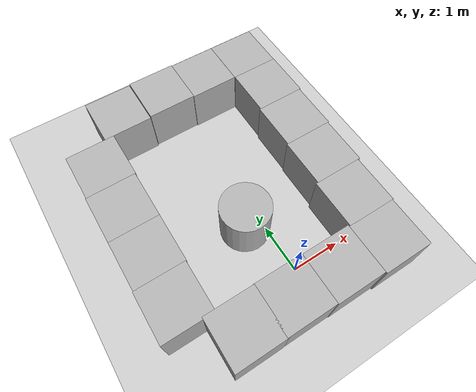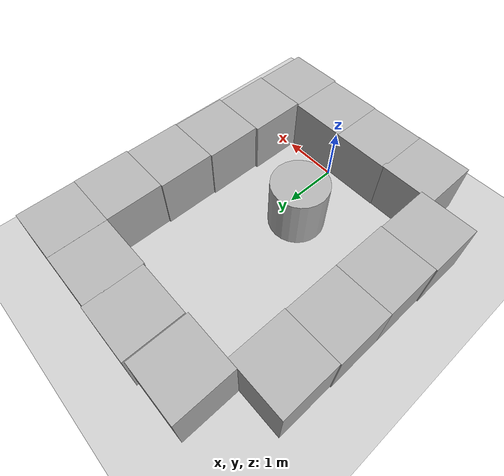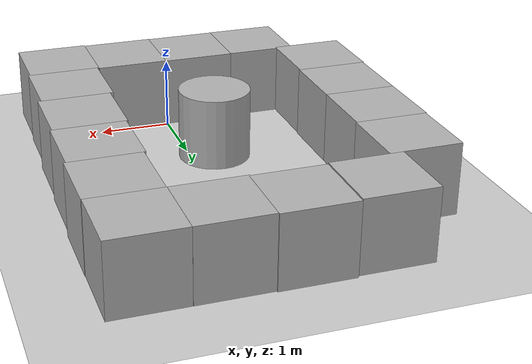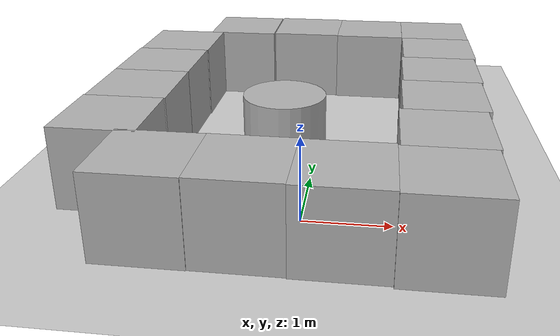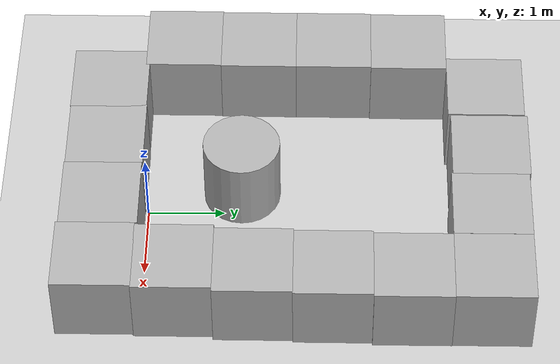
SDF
<sdf version='1.9'>
  <world name='husarion_world'>
    <physics name='1ms' type='ignored'>
      <max_step_size>0.001</max_step_size>
      <real_time_factor>1</real_time_factor>
      <real_time_update_rate>1000</real_time_update_rate>
    </physics>
    <gravity>0 0 -9.8</gravity>
    <magnetic_field>6e-06 2.3e-05 -4.2e-05</magnetic_field>
    <atmosphere type='adiabatic'/>
    <scene>
      <ambient>0.4 0.4 0.4 1</ambient>
      <background>0.7 0.7 0.7 1</background>
      <shadows>true</shadows>
    </scene>
    <model name='ground_plane'>
      <static>true</static>
      <link name='link'>
        <collision name='collision'>
          <geometry>
            <plane>
              <normal>0 0 1</normal>
              <size>100 100</size>
            </plane>
          </geometry>
          <surface>
            <friction>
              <ode/>
            </friction>
            <bounce/>
            <contact/>
          </surface>
        </collision>
        <visual name='visual'>
          <geometry>
            <plane>
              <normal>0 0 1</normal>
              <size>100 100</size>
            </plane>
          </geometry>
          <material>
            <ambient>0.8 0.8 0.8 1</ambient>
            <diffuse>0.8 0.8 0.8 1</diffuse>
            <specular>0.8 0.8 0.8 1</specular>
          </material>
        </visual>
        <pose>0 0 0 0 -0 0</pose>
        <inertial>
          <pose>0 0 0 0 -0 0</pose>
          <mass>1</mass>
          <inertia>
            <ixx>1</ixx>
            <ixy>0</ixy>
            <ixz>0</ixz>
            <iyy>1</iyy>
            <iyz>0</iyz>
            <izz>1</izz>
          </inertia>
        </inertial>
        <enable_wind>false</enable_wind>
      </link>
      <pose>0 0 0 0 -0 0</pose>
      <self_collide>false</self_collide>
    </model>

    <model name='box'>
      <pose>1.61231 3.42244 0.5 0 0 0</pose>
      <link name='box_link'>
        <inertial>
          <inertia>
            <ixx>0.16666</ixx>
            <ixy>0</ixy>
            <ixz>0</ixz>
            <iyy>0.16666</iyy>
            <iyz>0</iyz>
            <izz>0.16666</izz>
          </inertia>
          <mass>1</mass>
          <pose>0 0 0 0 -0 0</pose>
        </inertial>
        <collision name='box_collision'>
          <geometry>
            <box>
              <size>1 1 1</size>
            </box>
          </geometry>
          <surface>
            <friction>
              <ode/>
            </friction>
            <bounce/>
            <contact/>
          </surface>
        </collision>
        <visual name='box_visual'>
          <geometry>
            <box>
              <size>1 1 1</size>
            </box>
          </geometry>
          <material>
            <ambient>0.3 0.3 0.3 1</ambient>
            <diffuse>0.7 0.7 0.7 1</diffuse>
            <specular>1 1 1 1</specular>
          </material>
        </visual>
        <pose>0 0 0 0 -0 0</pose>
        <enable_wind>false</enable_wind>
      </link>
      <static>false</static>
      <self_collide>false</self_collide>
    </model>
    <model name='box_0'>
      <pose>1.58532 2.42244 0.5 -0 0 0</pose>
      <link name='box_link'>
        <inertial>
          <inertia>
            <ixx>0.16666</ixx>
            <ixy>0</ixy>
            <ixz>0</ixz>
            <iyy>0.16666</iyy>
            <iyz>0</iyz>
            <izz>0.16666</izz>
          </inertia>
          <mass>1</mass>
          <pose>0 0 0 0 -0 0</pose>
        </inertial>
        <collision name='box_collision'>
          <geometry>
            <box>
              <size>1 1 1</size>
            </box>
          </geometry>
          <surface>
            <friction>
              <ode/>
            </friction>
            <bounce/>
            <contact/>
          </surface>
        </collision>
        <visual name='box_visual'>
          <geometry>
            <box>
              <size>1 1 1</size>
            </box>
          </geometry>
          <material>
            <ambient>0.3 0.3 0.3 1</ambient>
            <diffuse>0.7 0.7 0.7 1</diffuse>
            <specular>1 1 1 1</specular>
          </material>
        </visual>
        <pose>0 0 0 0 -0 0</pose>
        <enable_wind>false</enable_wind>
      </link>
      <static>false</static>
      <self_collide>false</self_collide>
    </model>
    <model name='box_1'>
      <pose>1.56194 1.42244 0.5 -0 0 0</pose>
      <link name='box_link'>
        <inertial>
          <inertia>
            <ixx>0.16666</ixx>
            <ixy>0</ixy>
            <ixz>0</ixz>
            <iyy>0.16666</iyy>
            <iyz>0</iyz>
            <izz>0.16666</izz>
          </inertia>
          <mass>1</mass>
          <pose>0 0 0 0 -0 0</pose>
        </inertial>
        <collision name='box_collision'>
          <geometry>
            <box>
              <size>1 1 1</size>
            </box>
          </geometry>
          <surface>
            <friction>
              <ode/>
            </friction>
            <bounce/>
            <contact/>
          </surface>
        </collision>
        <visual name='box_visual'>
          <geometry>
            <box>
              <size>1 1 1</size>
            </box>
          </geometry>
          <material>
            <ambient>0.3 0.3 0.3 1</ambient>
            <diffuse>0.7 0.7 0.7 1</diffuse>
            <specular>1 1 1 1</specular>
          </material>
        </visual>
        <pose>0 0 0 0 -0 0</pose>
        <enable_wind>false</enable_wind>
      </link>
      <static>false</static>
      <self_collide>false</self_collide>
    </model>
    <model name='box_2'>
      <pose>1.51585 0.422439 0.5 0 -0 -0</pose>
      <link name='box_link'>
        <inertial>
          <inertia>
            <ixx>0.16666</ixx>
            <ixy>0</ixy>
            <ixz>0</ixz>
            <iyy>0.16666</iyy>
            <iyz>0</iyz>
            <izz>0.16666</izz>
          </inertia>
          <mass>1</mass>
          <pose>0 0 0 0 -0 0</pose>
        </inertial>
        <collision name='box_collision'>
          <geometry>
            <box>
              <size>1 1 1</size>
            </box>
          </geometry>
          <surface>
            <friction>
              <ode/>
            </friction>
            <bounce/>
            <contact/>
          </surface>
        </collision>
        <visual name='box_visual'>
          <geometry>
            <box>
              <size>1 1 1</size>
            </box>
          </geometry>
          <material>
            <ambient>0.3 0.3 0.3 1</ambient>
            <diffuse>0.7 0.7 0.7 1</diffuse>
            <specular>1 1 1 1</specular>
          </material>
        </visual>
        <pose>0 0 0 0 -0 0</pose>
        <enable_wind>false</enable_wind>
      </link>
      <static>false</static>
      <self_collide>false</self_collide>
    </model>
    <model name='box_3'>
      <pose>1.49307 -0.571739 0.5 0 0 0</pose>
      <link name='box_link'>
        <inertial>
          <inertia>
            <ixx>0.16666</ixx>
            <ixy>0</ixy>
            <ixz>0</ixz>
            <iyy>0.16666</iyy>
            <iyz>0</iyz>
            <izz>0.16666</izz>
          </inertia>
          <mass>1</mass>
          <pose>0 0 0 0 -0 0</pose>
        </inertial>
        <collision name='box_collision'>
          <geometry>
            <box>
              <size>1 1 1</size>
            </box>
          </geometry>
          <surface>
            <friction>
              <ode/>
            </friction>
            <bounce/>
            <contact/>
          </surface>
        </collision>
        <visual name='box_visual'>
          <geometry>
            <box>
              <size>1 1 1</size>
            </box>
          </geometry>
          <material>
            <ambient>0.3 0.3 0.3 1</ambient>
            <diffuse>0.7 0.7 0.7 1</diffuse>
            <specular>1 1 1 1</specular>
          </material>
        </visual>
        <pose>0 0 0 0 -0 0</pose>
        <enable_wind>false</enable_wind>
      </link>
      <static>false</static>
      <self_collide>false</self_collide>
    </model>
    <model name='box_4'>
      <pose>0.493073 -0.543258 0.5 0 -0 -0</pose>
      <link name='box_link'>
        <inertial>
          <inertia>
            <ixx>0.16666</ixx>
            <ixy>0</ixy>
            <ixz>0</ixz>
            <iyy>0.16666</iyy>
            <iyz>0</iyz>
            <izz>0.16666</izz>
          </inertia>
          <mass>1</mass>
          <pose>0 0 0 0 -0 0</pose>
        </inertial>
        <collision name='box_collision'>
          <geometry>
            <box>
              <size>1 1 1</size>
            </box>
          </geometry>
          <surface>
            <friction>
              <ode/>
            </friction>
            <bounce/>
            <contact/>
          </surface>
        </collision>
        <visual name='box_visual'>
          <geometry>
            <box>
              <size>1 1 1</size>
            </box>
          </geometry>
          <material>
            <ambient>0.3 0.3 0.3 1</ambient>
            <diffuse>0.7 0.7 0.7 1</diffuse>
            <specular>1 1 1 1</specular>
          </material>
        </visual>
        <pose>0 0 0 0 -0 0</pose>
        <enable_wind>false</enable_wind>
      </link>
      <static>false</static>
      <self_collide>false</self_collide>
    </model>
    <model name='box_5'>
      <pose>1.60716 4.42244 0.5 -0 0 -0</pose>
      <link name='box_link'>
        <inertial>
          <inertia>
            <ixx>0.16666</ixx>
            <ixy>0</ixy>
            <ixz>0</ixz>
            <iyy>0.16666</iyy>
            <iyz>0</iyz>
            <izz>0.16666</izz>
          </inertia>
          <mass>1</mass>
          <pose>0 0 0 0 -0 0</pose>
        </inertial>
        <collision name='box_collision'>
          <geometry>
            <box>
              <size>1 1 1</size>
            </box>
          </geometry>
          <surface>
            <friction>
              <ode/>
            </friction>
            <bounce/>
            <contact/>
          </surface>
        </collision>
        <visual name='box_visual'>
          <geometry>
            <box>
              <size>1 1 1</size>
            </box>
          </geometry>
          <material>
            <ambient>0.3 0.3 0.3 1</ambient>
            <diffuse>0.7 0.7 0.7 1</diffuse>
            <specular>1 1 1 1</specular>
          </material>
        </visual>
        <pose>0 0 0 0 -0 0</pose>
        <enable_wind>false</enable_wind>
      </link>
      <static>false</static>
      <self_collide>false</self_collide>
    </model>
    <model name='box_6'>
      <pose>0.606773 4.42413 0.5 0 0 -0</pose>
      <link name='box_link'>
        <inertial>
          <inertia>
            <ixx>0.16666</ixx>
            <ixy>0</ixy>
            <ixz>0</ixz>
            <iyy>0.16666</iyy>
            <iyz>0</iyz>
            <izz>0.16666</izz>
          </inertia>
          <mass>1</mass>
          <pose>0 0 0 0 -0 0</pose>
        </inertial>
        <collision name='box_collision'>
          <geometry>
            <box>
              <size>1 1 1</size>
            </box>
          </geometry>
          <surface>
            <friction>
              <ode/>
            </friction>
            <bounce/>
            <contact/>
          </surface>
        </collision>
        <visual name='box_visual'>
          <geometry>
            <box>
              <size>1 1 1</size>
            </box>
          </geometry>
          <material>
            <ambient>0.3 0.3 0.3 1</ambient>
            <diffuse>0.7 0.7 0.7 1</diffuse>
            <specular>1 1 1 1</specular>
          </material>
        </visual>
        <pose>0 0 0 0 -0 0</pose>
        <enable_wind>false</enable_wind>
      </link>
      <static>false</static>
      <self_collide>false</self_collide>
    </model>
    <model name='box_7'>
      <pose>-0.506927 -0.532287 0.5 0 0 -0</pose>
      <link name='box_link'>
        <inertial>
          <inertia>
            <ixx>0.16666</ixx>
            <ixy>0</ixy>
            <ixz>0</ixz>
            <iyy>0.16666</iyy>
            <iyz>0</iyz>
            <izz>0.16666</izz>
          </inertia>
          <mass>1</mass>
          <pose>0 0 0 0 -0 0</pose>
        </inertial>
        <collision name='box_collision'>
          <geometry>
            <box>
              <size>1 1 1</size>
            </box>
          </geometry>
          <surface>
            <friction>
              <ode/>
            </friction>
            <bounce/>
            <contact/>
          </surface>
        </collision>
        <visual name='box_visual'>
          <geometry>
            <box>
              <size>1 1 1</size>
            </box>
          </geometry>
          <material>
            <ambient>0.3 0.3 0.3 1</ambient>
            <diffuse>0.7 0.7 0.7 1</diffuse>
            <specular>1 1 1 1</specular>
          </material>
        </visual>
        <pose>0 0 0 0 -0 0</pose>
        <enable_wind>false</enable_wind>
      </link>
      <static>false</static>
      <self_collide>false</self_collide>
    </model>
    <model name='box_8'>
      <pose>-0.382882 4.44287 0.5 -0 -0 -0</pose>
      <link name='box_link'>
        <inertial>
          <inertia>
            <ixx>0.16666</ixx>
            <ixy>0</ixy>
            <ixz>0</ixz>
            <iyy>0.16666</iyy>
            <iyz>0</iyz>
            <izz>0.16666</izz>
          </inertia>
          <mass>1</mass>
          <pose>0 0 0 0 -0 0</pose>
        </inertial>
        <collision name='box_collision'>
          <geometry>
            <box>
              <size>1 1 1</size>
            </box>
          </geometry>
          <surface>
            <friction>
              <ode/>
            </friction>
            <bounce/>
            <contact/>
          </surface>
        </collision>
        <visual name='box_visual'>
          <geometry>
            <box>
              <size>1 1 1</size>
            </box>
          </geometry>
          <material>
            <ambient>0.3 0.3 0.3 1</ambient>
            <diffuse>0.7 0.7 0.7 1</diffuse>
            <specular>1 1 1 1</specular>
          </material>
        </visual>
        <pose>0 0 0 0 -0 0</pose>
        <enable_wind>false</enable_wind>
      </link>
      <static>false</static>
      <self_collide>false</self_collide>
    </model>
    <model name='box_9'>
      <pose>-1.39969 4.40969 0.5 -0 -0 -0</pose>
      <link name='box_link'>
        <inertial>
          <inertia>
            <ixx>0.16666</ixx>
            <ixy>0</ixy>
            <ixz>0</ixz>
            <iyy>0.16666</iyy>
            <iyz>0</iyz>
            <izz>0.16666</izz>
          </inertia>
          <mass>1</mass>
          <pose>0 0 0 0 -0 0</pose>
        </inertial>
        <collision name='box_collision'>
          <geometry>
            <box>
              <size>1 1 1</size>
            </box>
          </geometry>
          <surface>
            <friction>
              <ode/>
            </friction>
            <bounce/>
            <contact/>
          </surface>
        </collision>
        <visual name='box_visual'>
          <geometry>
            <box>
              <size>1 1 1</size>
            </box>
          </geometry>
          <material>
            <ambient>0.3 0.3 0.3 1</ambient>
            <diffuse>0.7 0.7 0.7 1</diffuse>
            <specular>1 1 1 1</specular>
          </material>
        </visual>
        <pose>0 0 0 0 -0 0</pose>
        <enable_wind>false</enable_wind>
      </link>
      <static>false</static>
      <self_collide>false</self_collide>
    </model>
    <model name='box_10'>
      <pose>-1.48044 -0.538375 0.5 0 -0 1e-06</pose>
      <link name='box_link'>
        <inertial>
          <inertia>
            <ixx>0.16666</ixx>
            <ixy>0</ixy>
            <ixz>0</ixz>
            <iyy>0.16666</iyy>
            <iyz>0</iyz>
            <izz>0.16666</izz>
          </inertia>
          <mass>1</mass>
          <pose>0 0 0 0 -0 0</pose>
        </inertial>
        <collision name='box_collision'>
          <geometry>
            <box>
              <size>1 1 1</size>
            </box>
          </geometry>
          <surface>
            <friction>
              <ode/>
            </friction>
            <bounce/>
            <contact/>
          </surface>
        </collision>
        <visual name='box_visual'>
          <geometry>
            <box>
              <size>1 1 1</size>
            </box>
          </geometry>
          <material>
            <ambient>0.3 0.3 0.3 1</ambient>
            <diffuse>0.7 0.7 0.7 1</diffuse>
            <specular>1 1 1 1</specular>
          </material>
        </visual>
        <pose>0 0 0 0 -0 0</pose>
        <enable_wind>false</enable_wind>
      </link>
      <static>false</static>
      <self_collide>false</self_collide>
    </model>
    <model name='box_11'>
      <pose>-2.21542 3.40969 0.5 -0 0 -0</pose>
      <link name='box_link'>
        <inertial>
          <inertia>
            <ixx>0.16666</ixx>
            <ixy>0</ixy>
            <ixz>0</ixz>
            <iyy>0.16666</iyy>
            <iyz>0</iyz>
            <izz>0.16666</izz>
          </inertia>
          <mass>1</mass>
          <pose>0 0 0 0 -0 0</pose>
        </inertial>
        <collision name='box_collision'>
          <geometry>
            <box>
              <size>1 1 1</size>
            </box>
          </geometry>
          <surface>
            <friction>
              <ode/>
            </friction>
            <bounce/>
            <contact/>
          </surface>
        </collision>
        <visual name='box_visual'>
          <geometry>
            <box>
              <size>1 1 1</size>
            </box>
          </geometry>
          <material>
            <ambient>0.3 0.3 0.3 1</ambient>
            <diffuse>0.7 0.7 0.7 1</diffuse>
            <specular>1 1 1 1</specular>
          </material>
        </visual>
        <pose>0 0 0 0 -0 0</pose>
        <enable_wind>false</enable_wind>
      </link>
      <static>false</static>
      <self_collide>false</self_collide>
    </model>
    <model name='box_12'>
      <pose>-2.22868 2.40969 0.5 -0 -0 -0</pose>
      <link name='box_link'>
        <inertial>
          <inertia>
            <ixx>0.16666</ixx>
            <ixy>0</ixy>
            <ixz>0</ixz>
            <iyy>0.16666</iyy>
            <iyz>0</iyz>
            <izz>0.16666</izz>
          </inertia>
          <mass>1</mass>
          <pose>0 0 0 0 -0 0</pose>
        </inertial>
        <collision name='box_collision'>
          <geometry>
            <box>
              <size>1 1 1</size>
            </box>
          </geometry>
          <surface>
            <friction>
              <ode/>
            </friction>
            <bounce/>
            <contact/>
          </surface>
        </collision>
        <visual name='box_visual'>
          <geometry>
            <box>
              <size>1 1 1</size>
            </box>
          </geometry>
          <material>
            <ambient>0.3 0.3 0.3 1</ambient>
            <diffuse>0.7 0.7 0.7 1</diffuse>
            <specular>1 1 1 1</specular>
          </material>
        </visual>
        <pose>0 0 0 0 -0 0</pose>
        <enable_wind>false</enable_wind>
      </link>
      <static>false</static>
      <self_collide>false</self_collide>
    </model>
    <model name='box_13'>
      <pose>-2.22868 1.40969 0.5 0 -0 -0</pose>
      <link name='box_link'>
        <inertial>
          <inertia>
            <ixx>0.16666</ixx>
            <ixy>0</ixy>
            <ixz>0</ixz>
            <iyy>0.16666</iyy>
            <iyz>0</iyz>
            <izz>0.16666</izz>
          </inertia>
          <mass>1</mass>
          <pose>0 0 0 0 -0 0</pose>
        </inertial>
        <collision name='box_collision'>
          <geometry>
            <box>
              <size>1 1 1</size>
            </box>
          </geometry>
          <surface>
            <friction>
              <ode/>
            </friction>
            <bounce/>
            <contact/>
          </surface>
        </collision>
        <visual name='box_visual'>
          <geometry>
            <box>
              <size>1 1 1</size>
            </box>
          </geometry>
          <material>
            <ambient>0.3 0.3 0.3 1</ambient>
            <diffuse>0.7 0.7 0.7 1</diffuse>
            <specular>1 1 1 1</specular>
          </material>
        </visual>
        <pose>0 0 0 0 -0 0</pose>
        <enable_wind>false</enable_wind>
      </link>
      <static>false</static>
      <self_collide>false</self_collide>
    </model>
    <model name='box_14'>
      <pose>-2.24219 0.415622 0.5 0 -0 1e-06</pose>
      <link name='box_link'>
        <inertial>
          <inertia>
            <ixx>0.16666</ixx>
            <ixy>0</ixy>
            <ixz>0</ixz>
            <iyy>0.16666</iyy>
            <iyz>0</iyz>
            <izz>0.16666</izz>
          </inertia>
          <mass>1</mass>
          <pose>0 0 0 0 -0 0</pose>
        </inertial>
        <collision name='box_collision'>
          <geometry>
            <box>
              <size>1 1 1</size>
            </box>
          </geometry>
          <surface>
            <friction>
              <ode/>
            </friction>
            <bounce/>
            <contact/>
          </surface>
        </collision>
        <visual name='box_visual'>
          <geometry>
            <box>
              <size>1 1 1</size>
            </box>
          </geometry>
          <material>
            <ambient>0.3 0.3 0.3 1</ambient>
            <diffuse>0.7 0.7 0.7 1</diffuse>
            <specular>1 1 1 1</specular>
          </material>
        </visual>
        <pose>0 0 0 0 -0 0</pose>
        <enable_wind>false</enable_wind>
      </link>
      <static>false</static>
      <self_collide>false</self_collide>
    </model>
    <model name='cylinder'>
      <pose>-0.341778 1.22551 0.499999 -0 0 0</pose>
      <link name='cylinder_link'>
        <inertial>
          <inertia>
            <ixx>0.14580000000000001</ixx>
            <ixy>0</ixy>
            <ixz>0</ixz>
            <iyy>0.14580000000000001</iyy>
            <iyz>0</iyz>
            <izz>0.125</izz>
          </inertia>
          <mass>1</mass>
          <pose>0 0 0 0 -0 0</pose>
        </inertial>
        <collision name='cylinder_collision'>
          <geometry>
            <cylinder>
              <radius>0.5</radius>
              <length>1</length>
            </cylinder>
          </geometry>
          <surface>
            <friction>
              <ode/>
            </friction>
            <bounce/>
            <contact/>
          </surface>
        </collision>
        <visual name='cylinder_visual'>
          <geometry>
            <cylinder>
              <radius>0.5</radius>
              <length>1</length>
            </cylinder>
          </geometry>
          <material>
            <ambient>0.3 0.3 0.3 1</ambient>
            <diffuse>0.7 0.7 0.7 1</diffuse>
            <specular>1 1 1 1</specular>
          </material>
        </visual>
        <pose>0 0 0 0 -0 0</pose>
        <enable_wind>false</enable_wind>
      </link>
      <static>false</static>
      <self_collide>false</self_collide>
    </model>
    <light name='sun' type='directional'>
      <pose>0 0 10 0 -0 0</pose>
      <cast_shadows>true</cast_shadows>
      <intensity>1</intensity>
      <direction>-0.5 0.1 -0.9</direction>
      <diffuse>0.8 0.8 0.8 1</diffuse>
      <specular>0.2 0.2 0.2 1</specular>
      <attenuation>
        <range>1000</range>
        <linear>0.01</linear>
        <constant>0.90000000000000002</constant>
        <quadratic>0.001</quadratic>
      </attenuation>
      <spot>
        <inner_angle>0</inner_angle>
        <outer_angle>0</outer_angle>
        <falloff>0</falloff>
      </spot>
    </light>
  </world>
</sdf>
